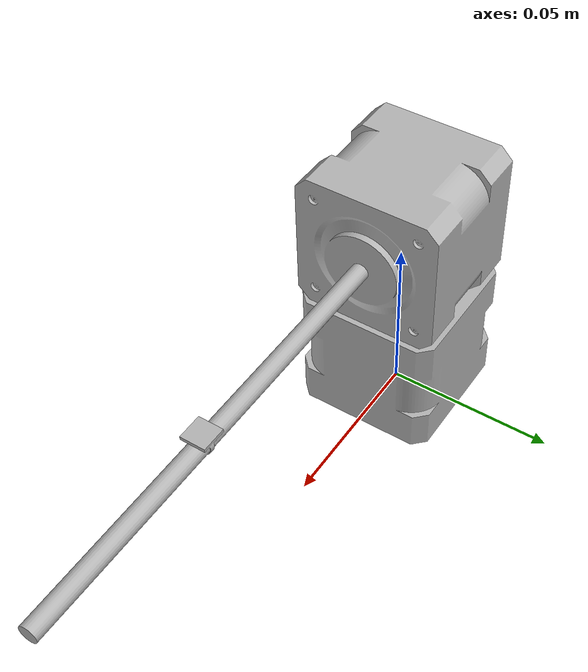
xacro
<?xml version="1.0" ?>
<robot name="nema17" xmlns:xacro="http://www.ros.org/wiki/xacro">

<xacro:include filename="$(find nema17_description)/urdf/materials.xacro" />
<xacro:include filename="$(find nema17_description)/urdf/nema17.trans" />
<xacro:include filename="$(find nema17_description)/urdf/nema17.gazebo" />
<link name="base_link">
  <inertial>
    <origin xyz="2.3720304016881362e-15 -4.15416882957642e-18 0.019668563572932028" rpy="0 0 0"/>
    <mass value="0.5370759547377878"/>
    <inertia ixx="0.000146" iyy="0.000146" izz="0.000152" ixy="-0.0" iyz="0.0" ixz="0.0"/>
  </inertial>
  <visual>
    <origin xyz="0 0 0" rpy="0 0 0"/>
    <geometry>
      <mesh filename="file://$(find nema17_description)/meshes/base_link.stl" scale="0.001 0.001 0.001"/>
    </geometry>
    <material name="silver"/>
  </visual>
  <collision>
    <origin xyz="0 0 0" rpy="0 0 0"/>
    <geometry>
      <mesh filename="file://$(find nema17_description)/meshes/base_link.stl" scale="0.001 0.001 0.001"/>
    </geometry>
  </collision>
</link>

<link name="servo_1">
  <inertial>
    <origin xyz="0.0001685635729320234 -8.104109710384824e-06 0.021149999999997636" rpy="0 0 0"/>
    <mass value="0.5370759547377878"/>
    <inertia ixx="0.000152" iyy="0.000146" izz="0.000146" ixy="0.0" iyz="0.0" ixz="-0.0"/>
  </inertial>
  <visual>
    <origin xyz="-0.0 -0.0 -0.039" rpy="0 0 0"/>
    <geometry>
      <mesh filename="file://$(find nema17_description)/meshes/servo_1.stl" scale="0.001 0.001 0.001"/>
    </geometry>
    <material name="silver"/>
  </visual>
  <collision>
    <origin xyz="-0.0 -0.0 -0.039" rpy="0 0 0"/>
    <geometry>
      <mesh filename="file://$(find nema17_description)/meshes/servo_1.stl" scale="0.001 0.001 0.001"/>
    </geometry>
  </collision>
</link>

<link name="bolt_1">
  <inertial>
    <origin xyz="0.06200000000000067 -1.0410971038066873e-07 -2.6142282782970483e-13" rpy="0 0 0"/>
    <mass value="0.019112664306276495"/>
    <inertia ixx="0.0" iyy="2.5e-05" izz="2.5e-05" ixy="0.0" iyz="0.0" ixz="-0.0"/>
  </inertial>
  <visual>
    <origin xyz="-0.0215 8e-06 -0.06015" rpy="0 0 0"/>
    <geometry>
      <mesh filename="file://$(find nema17_description)/meshes/bolt_1.stl" scale="0.001 0.001 0.001"/>
    </geometry>
    <material name="silver"/>
  </visual>
  <collision>
    <origin xyz="-0.0215 8e-06 -0.06015" rpy="0 0 0"/>
    <geometry>
      <mesh filename="file://$(find nema17_description)/meshes/bolt_1.stl" scale="0.001 0.001 0.001"/>
    </geometry>
  </collision>
</link>

<link name="nozzle_1">
  <inertial>
    <origin xyz="-0.01644999999999998 7.895890570525599e-06 0.02438269100372132" rpy="0 0 0"/>
    <mass value="0.0004262480901455858"/>
    <inertia ixx="0.0" iyy="0.0" izz="0.0" ixy="-0.0" iyz="0.0" ixz="-0.0"/>
  </inertial>
  <visual>
    <origin xyz="-0.04265 1.6e-05 -0.03865" rpy="0 0 0"/>
    <geometry>
      <mesh filename="file://$(find nema17_description)/meshes/nozzle_1.stl" scale="0.001 0.001 0.001"/>
    </geometry>
    <material name="silver"/>
  </visual>
  <collision>
    <origin xyz="-0.04265 1.6e-05 -0.03865" rpy="0 0 0"/>
    <geometry>
      <mesh filename="file://$(find nema17_description)/meshes/nozzle_1.stl" scale="0.001 0.001 0.001"/>
    </geometry>
  </collision>
</link>

<joint name="j1" type="revolute">
  <limit lower="-3.14" upper="3.14" effort="0.0" velocity="0.0"/>
  <axis xyz="0.0 0.0 1.0"/>
  <origin xyz="0.0 0.0 0.039" rpy="0 0 0"/>
  <parent link="base_link"/>
  <child link="servo_1"/>
</joint>

<joint name="Rigid 10" type="fixed">
  <origin xyz="0.0215 -8e-06 0.02115" rpy="0 0 0"/>
  <parent link="servo_1"/>
  <child link="bolt_1"/>
</joint>

<joint name="bolt_to_nozzle" type="prismatic">
  <origin xyz="0.02115 -8e-06 -0.0215" rpy="0 0 0"/>
  <parent link="bolt_1"/>
  <child link="nozzle_1"/>
  <axis xyz="1.0 0.0 0.0"/>
  <limit upper="0.12" lower="0.004" effort="100" velocity="100"/>
</joint>

</robot>

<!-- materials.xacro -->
<robot name="nema17" xmlns:xacro="http://www.ros.org/wiki/xacro" >

<material name="silver">
  <color rgba="0.700 0.700 0.700 1.000"/>
</material>

</robot>

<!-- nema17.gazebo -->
<robot name="nema17" xmlns:xacro="http://www.ros.org/wiki/xacro" >

<xacro:property name="body_color" value="Gazebo/Silver" />

<gazebo>
  <plugin name="control" filename="libgazebo_ros_control.so"/>
</gazebo>
<gazebo reference="base_link">
  <material>${body_color}</material>
  <mu1>0.2</mu1>
  <mu2>0.2</mu2>
  <self_collide>true</self_collide>
  <gravity>true</gravity>
</gazebo>

<gazebo reference="servo_1">
  <material>${body_color}</material>
  <mu1>0.2</mu1>
  <mu2>0.2</mu2>
  <self_collide>true</self_collide>
</gazebo>

<gazebo reference="bolt_1">
  <material>${body_color}</material>
  <mu1>0.2</mu1>
  <mu2>0.2</mu2>
  <self_collide>true</self_collide>
</gazebo>

<gazebo reference="nozzle_1">
  <material>${body_color}</material>
  <mu1>0.2</mu1>
  <mu2>0.2</mu2>
  <self_collide>true</self_collide>
</gazebo>

</robot>
